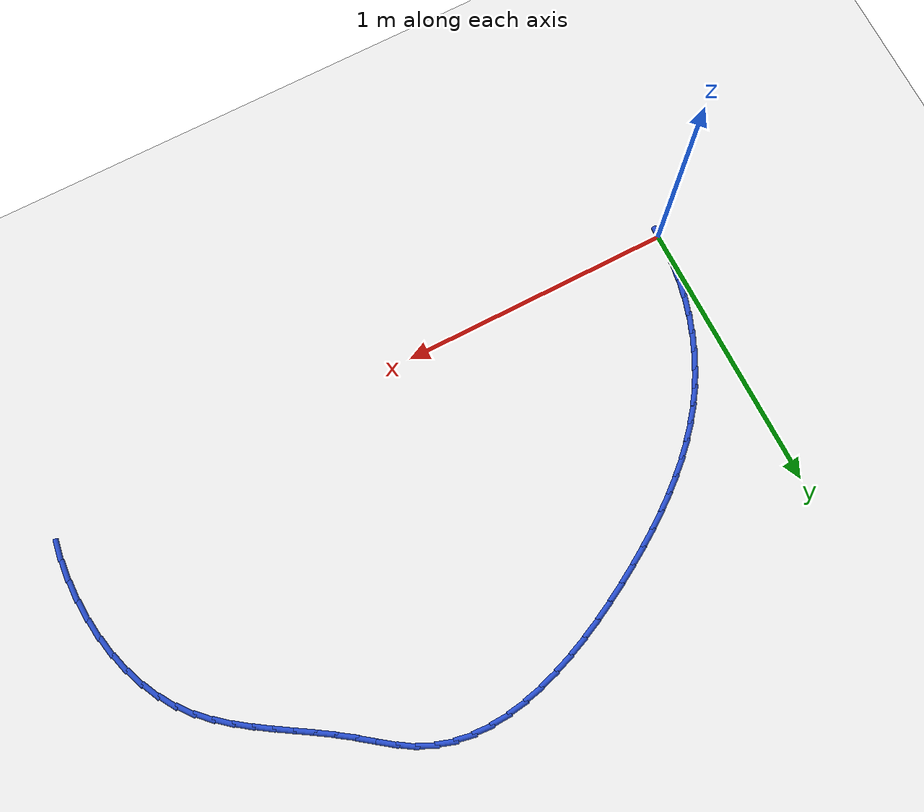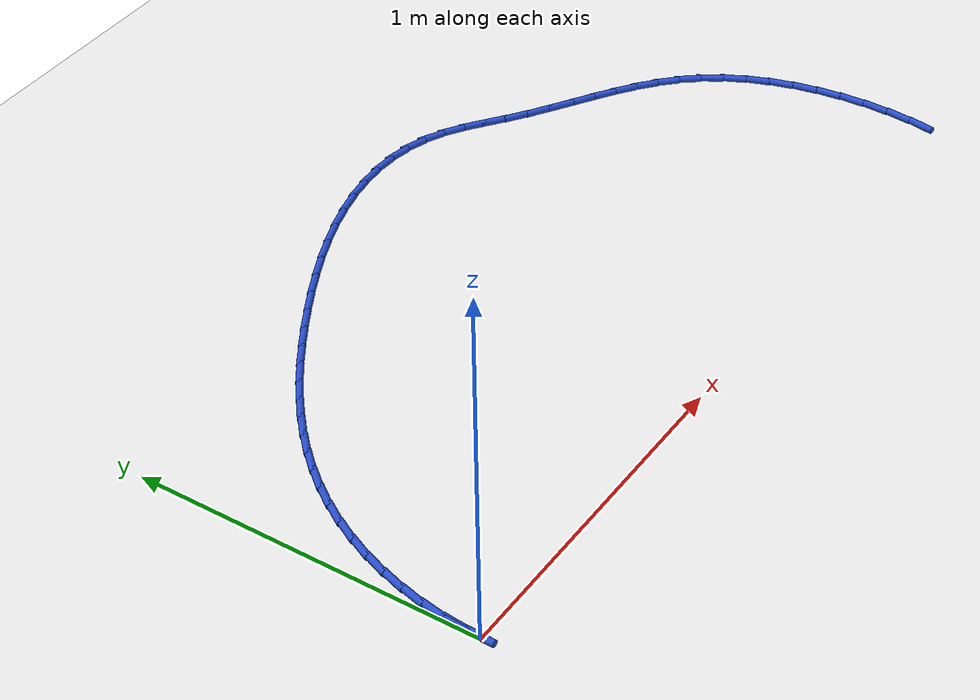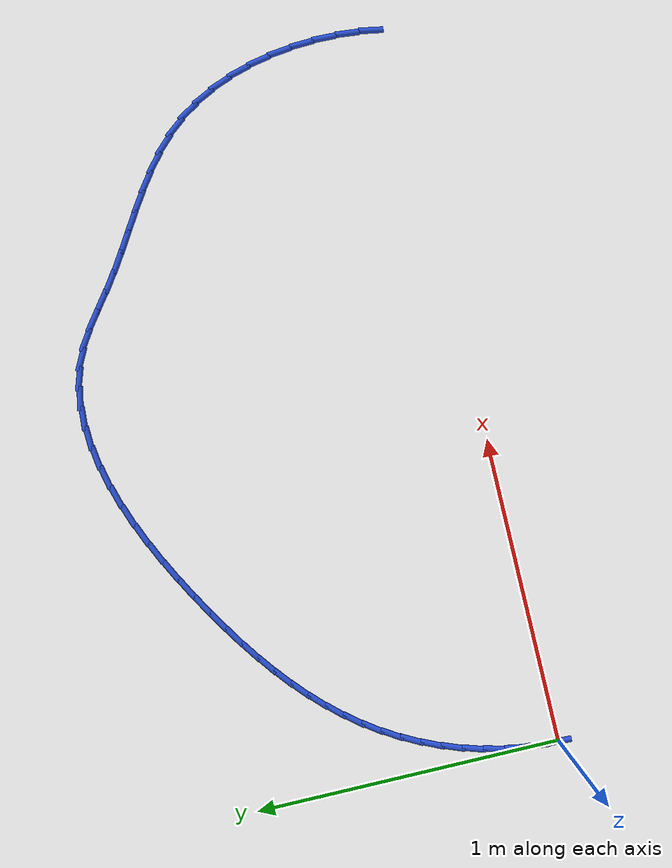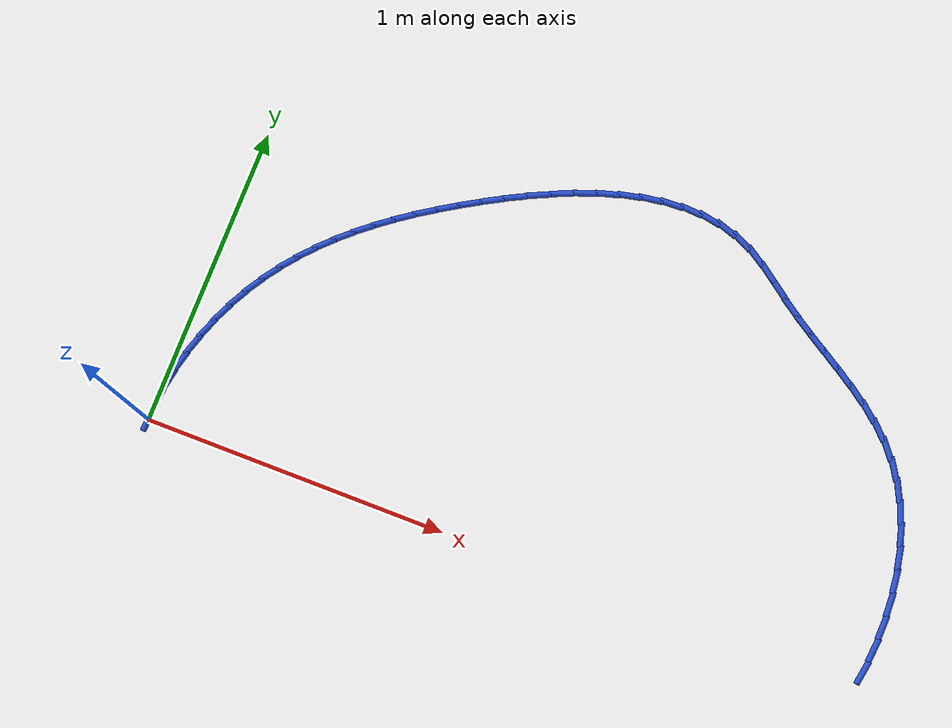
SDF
<sdf version="1.6">
 <world name="default">
  <model name="ground_plane">
   <static>1</static>
   <link name="link">
    <collision name="collision">
     <geometry><plane><normal>0 0 1</normal><size>100 100</size></plane></geometry>
     <surface><friction><ode><mu>100</mu><mu2>50</mu2></ode></friction></surface>
    </collision>
    <visual name="visual">
     <cast_shadows>0</cast_shadows>
     <geometry><plane><normal>0 0 1</normal><size>100 100</size></plane></geometry>
     <material>
      <script><uri>file://media/materials/scripts/gazebo.material</uri><name>Gazebo/WhiteGlow</name></script>
     </material>
    </visual>
   </link>
  </model>
  <model name="line">
   <link name="link_1">
    <pose>0.002940504532465978 0.06962515961517012 0.01 0 1.57 1.4588920820581899</pose>
    <collision name="collision">
     <geometry><cylinder><radius>0.01</radius><length>0.08</length></cylinder></geometry>
    </collision>
    <visual name="visual">
     <material>
      <script><name>Gazebo/Blue</name><uri>file://media/materials/scripts/gazebo.material</uri></script>
     </material>
     <geometry><cylinder><radius>0.01</radius><length>0.08</length></cylinder></geometry>
    </visual>
   </link>
   <link name="link_2">
    <pose>0.010677511127661188 0.13847584449955022 0.01 0 1.57 1.390994139415365</pose>
    <collision name="collision">
     <geometry><cylinder><radius>0.01</radius><length>0.08</length></cylinder></geometry>
    </collision>
    <visual name="visual">
     <material>
      <script><name>Gazebo/Blue</name><uri>file://media/materials/scripts/gazebo.material</uri></script>
     </material>
     <geometry><cylinder><radius>0.01</radius><length>0.08</length></cylinder></geometry>
    </visual>
   </link>
   <link name="link_3">
    <pose>0.023001024885902506 0.20627493666170113 0.01 0 1.57 1.3246508412545366</pose>
    <collision name="collision">
     <geometry><cylinder><radius>0.01</radius><length>0.08</length></cylinder></geometry>
    </collision>
    <visual name="visual">
     <material>
      <script><name>Gazebo/Blue</name><uri>file://media/materials/scripts/gazebo.material</uri></script>
     </material>
     <geometry><cylinder><radius>0.01</radius><length>0.08</length></cylinder></geometry>
    </visual>
   </link>
   <link name="link_4">
    <pose>0.03970105090750696 0.2727453181101838 0.01 0 1.57 1.2595574081873244</pose>
    <collision name="collision">
     <geometry><cylinder><radius>0.01</radius><length>0.08</length></cylinder></geometry>
    </collision>
    <visual name="visual">
     <material>
      <script><name>Gazebo/Blue</name><uri>file://media/materials/scripts/gazebo.material</uri></script>
     </material>
     <geometry><cylinder><radius>0.01</radius><length>0.08</length></cylinder></geometry>
    </visual>
   </link>
   <link name="link_5">
    <pose>0.06056759429279154 0.3376098708535593 0.01 0 1.57 1.1953587905138918</pose>
    <collision name="collision">
     <geometry><cylinder><radius>0.01</radius><length>0.08</length></cylinder></geometry>
    </collision>
    <visual name="visual">
     <material>
      <script><name>Gazebo/Blue</name><uri>file://media/materials/scripts/gazebo.material</uri></script>
     </material>
     <geometry><cylinder><radius>0.01</radius><length>0.08</length></cylinder></geometry>
    </visual>
   </link>
   <link name="link_6">
    <pose>0.08539066014207326 0.40059147690038827 0.01 0 1.57 1.131658081822905</pose>
    <collision name="collision">
     <geometry><cylinder><radius>0.01</radius><length>0.08</length></cylinder></geometry>
    </collision>
    <visual name="visual">
     <material>
      <script><name>Gazebo/Blue</name><uri>file://media/materials/scripts/gazebo.material</uri></script>
     </material>
     <geometry><cylinder><radius>0.01</radius><length>0.08</length></cylinder></geometry>
    </visual>
   </link>
   <link name="link_7">
    <pose>0.11396025355566908 0.4614130182592316 0.01 0 1.57 1.0680224347300236</pose>
    <collision name="collision">
     <geometry><cylinder><radius>0.01</radius><length>0.08</length></cylinder></geometry>
    </collision>
    <visual name="visual">
     <material>
      <script><name>Gazebo/Blue</name><uri>file://media/materials/scripts/gazebo.material</uri></script>
     </material>
     <geometry><cylinder><radius>0.01</radius><length>0.08</length></cylinder></geometry>
    </visual>
   </link>
   <link name="link_8">
    <pose>0.14606637963389607 0.5197973769386506 0.01 0 1.57 1.004097324102144</pose>
    <collision name="collision">
     <geometry><cylinder><radius>0.01</radius><length>0.08</length></cylinder></geometry>
    </collision>
    <visual name="visual">
     <material>
      <script><name>Gazebo/Blue</name><uri>file://media/materials/scripts/gazebo.material</uri></script>
     </material>
     <geometry><cylinder><radius>0.01</radius><length>0.08</length></cylinder></geometry>
    </visual>
   </link>
   <link name="link_9">
    <pose>0.18150323803102736 0.5754875836202319 0.01 0 1.57 0.9411665923642939</pose>
    <collision name="collision">
     <geometry><cylinder><radius>0.01</radius><length>0.08</length></cylinder></geometry>
    </collision>
    <visual name="visual">
     <material>
      <script><name>Gazebo/Blue</name><uri>file://media/materials/scripts/gazebo.material</uri></script>
     </material>
     <geometry><cylinder><radius>0.01</radius><length>0.08</length></cylinder></geometry>
    </visual>
   </link>
   <link name="link_10">
    <pose>0.22012057594966414 0.6284934933965445 0.01 0 1.57 0.8809076936026338</pose>
    <collision name="collision">
     <geometry><cylinder><radius>0.01</radius><length>0.08</length></cylinder></geometry>
    </collision>
    <visual name="visual">
     <material>
      <script><name>Gazebo/Blue</name><uri>file://media/materials/scripts/gazebo.material</uri></script>
     </material>
     <geometry><cylinder><radius>0.01</radius><length>0.08</length></cylinder></geometry>
    </visual>
   </link>
   <link name="link_11">
    <pose>0.26180748744716154 0.6790139652254881 0.01 0 1.57 0.8240451051574373</pose>
    <collision name="collision">
     <geometry><cylinder><radius>0.01</radius><length>0.08</length></cylinder></geometry>
    </collision>
    <visual name="visual">
     <material>
      <script><name>Gazebo/Blue</name><uri>file://media/materials/scripts/gazebo.material</uri></script>
     </material>
     <geometry><cylinder><radius>0.01</radius><length>0.08</length></cylinder></geometry>
    </visual>
   </link>
   <link name="link_12">
    <pose>0.30645389974007514 0.7272518601716182 0.01 0 1.57 0.7711161258153805</pose>
    <collision name="collision">
     <geometry><cylinder><radius>0.01</radius><length>0.08</length></cylinder></geometry>
    </collision>
    <visual name="visual">
     <material>
      <script><name>Gazebo/Blue</name><uri>file://media/materials/scripts/gazebo.material</uri></script>
     </material>
     <geometry><cylinder><radius>0.01</radius><length>0.08</length></cylinder></geometry>
    </visual>
   </link>
   <link name="link_13">
    <pose>0.3539497400449604 0.7734100392994911 0.01 0 1.57 0.7224883708896002</pose>
    <collision name="collision">
     <geometry><cylinder><radius>0.01</radius><length>0.08</length></cylinder></geometry>
    </collision>
    <visual name="visual">
     <material>
      <script><name>Gazebo/Blue</name><uri>file://media/materials/scripts/gazebo.material</uri></script>
     </material>
     <geometry><cylinder><radius>0.01</radius><length>0.08</length></cylinder></geometry>
    </visual>
   </link>
   <link name="link_14">
    <pose>0.4041849355783729 0.817691363673663 0.01 0 1.57 0.6783722897854365</pose>
    <collision name="collision">
     <geometry><cylinder><radius>0.01</radius><length>0.08</length></cylinder></geometry>
    </collision>
    <visual name="visual">
     <material>
      <script><name>Gazebo/Blue</name><uri>file://media/materials/scripts/gazebo.material</uri></script>
     </material>
     <geometry><cylinder><radius>0.01</radius><length>0.08</length></cylinder></geometry>
    </visual>
   </link>
   <link name="link_15">
    <pose>0.4570494135568684 0.8602986943586904 0.01 0 1.57 0.6388445207097867</pose>
    <collision name="collision">
     <geometry><cylinder><radius>0.01</radius><length>0.08</length></cylinder></geometry>
    </collision>
    <visual name="visual">
     <material>
      <script><name>Gazebo/Blue</name><uri>file://media/materials/scripts/gazebo.material</uri></script>
     </material>
     <geometry><cylinder><radius>0.01</radius><length>0.08</length></cylinder></geometry>
    </visual>
   </link>
   <link name="link_16">
    <pose>0.5124331011970024 0.901434892419129 0.01 0 1.57 0.603876035274513</pose>
    <collision name="collision">
     <geometry><cylinder><radius>0.01</radius><length>0.08</length></cylinder></geometry>
    </collision>
    <visual name="visual">
     <material>
      <script><name>Gazebo/Blue</name><uri>file://media/materials/scripts/gazebo.material</uri></script>
     </material>
     <geometry><cylinder><radius>0.01</radius><length>0.08</length></cylinder></geometry>
    </visual>
   </link>
   <link name="link_17">
    <pose>0.5702259257153304 0.9413028189195354 0.01 0 1.57 0.5733603314839448</pose>
    <collision name="collision">
     <geometry><cylinder><radius>0.01</radius><length>0.08</length></cylinder></geometry>
    </collision>
    <visual name="visual">
     <material>
      <script><name>Gazebo/Blue</name><uri>file://media/materials/scripts/gazebo.material</uri></script>
     </material>
     <geometry><cylinder><radius>0.01</radius><length>0.08</length></cylinder></geometry>
    </visual>
   </link>
   <link name="link_18">
    <pose>0.6303178143284083 0.9801053349244656 0.01 0 1.57 0.5471382210214184</pose>
    <collision name="collision">
     <geometry><cylinder><radius>0.01</radius><length>0.08</length></cylinder></geometry>
    </collision>
    <visual name="visual">
     <material>
      <script><name>Gazebo/Blue</name><uri>file://media/materials/scripts/gazebo.material</uri></script>
     </material>
     <geometry><cylinder><radius>0.01</radius><length>0.08</length></cylinder></geometry>
    </visual>
   </link>
   <link name="link_19">
    <pose>0.6925986797543574 1.0180452551585053 0.01 0 1.57 0.5234035970549916</pose>
    <collision name="collision">
     <geometry><cylinder><radius>0.01</radius><length>0.08</length></cylinder></geometry>
    </collision>
    <visual name="visual">
     <material>
      <script><name>Gazebo/Blue</name><uri>file://media/materials/scripts/gazebo.material</uri></script>
     </material>
     <geometry><cylinder><radius>0.01</radius><length>0.08</length></cylinder></geometry>
    </visual>
   </link>
   <link name="link_20">
    <pose>0.7569054533422209 1.055156055015706 0.01 0 1.57 0.49661018077165053</pose>
    <collision name="collision">
     <geometry><cylinder><radius>0.01</radius><length>0.08</length></cylinder></geometry>
    </collision>
    <visual name="visual">
     <material>
      <script><name>Gazebo/Blue</name><uri>file://media/materials/scripts/gazebo.material</uri></script>
     </material>
     <geometry><cylinder><radius>0.01</radius><length>0.08</length></cylinder></geometry>
    </visual>
   </link>
   <link name="link_21">
    <pose>0.8229028028045137 1.0909206199489327 0.01 0 1.57 0.46519945039322314</pose>
    <collision name="collision">
     <geometry><cylinder><radius>0.01</radius><length>0.08</length></cylinder></geometry>
    </collision>
    <visual name="visual">
     <material>
      <script><name>Gazebo/Blue</name><uri>file://media/materials/scripts/gazebo.material</uri></script>
     </material>
     <geometry><cylinder><radius>0.01</radius><length>0.08</length></cylinder></geometry>
    </visual>
   </link>
   <link name="link_22">
    <pose>0.8902204450457815 1.1247101254547784 0.01 0 1.57 0.42850601090403156</pose>
    <collision name="collision">
     <geometry><cylinder><radius>0.01</radius><length>0.08</length></cylinder></geometry>
    </collision>
    <visual name="visual">
     <material>
      <script><name>Gazebo/Blue</name><uri>file://media/materials/scripts/gazebo.material</uri></script>
     </material>
     <geometry><cylinder><radius>0.01</radius><length>0.08</length></cylinder></geometry>
    </visual>
   </link>
   <link name="link_23">
    <pose>0.9584880969705709 1.1558957470298354 0.01 0 1.57 0.3856790070793091</pose>
    <collision name="collision">
     <geometry><cylinder><radius>0.01</radius><length>0.08</length></cylinder></geometry>
    </collision>
    <visual name="visual">
     <material>
      <script><name>Gazebo/Blue</name><uri>file://media/materials/scripts/gazebo.material</uri></script>
     </material>
     <geometry><cylinder><radius>0.01</radius><length>0.08</length></cylinder></geometry>
    </visual>
   </link>
   <link name="link_24">
    <pose>1.027335475483428 1.183848660170697 0.01 0 1.57 0.3356616734011062</pose>
    <collision name="collision">
     <geometry><cylinder><radius>0.01</radius><length>0.08</length></cylinder></geometry>
    </collision>
    <visual name="visual">
     <material>
      <script><name>Gazebo/Blue</name><uri>file://media/materials/scripts/gazebo.material</uri></script>
     </material>
     <geometry><cylinder><radius>0.01</radius><length>0.08</length></cylinder></geometry>
    </visual>
   </link>
   <link name="link_25">
    <pose>1.0963922974888984 1.207940040373956 0.01 0 1.57 0.2771782122763301</pose>
    <collision name="collision">
     <geometry><cylinder><radius>0.01</radius><length>0.08</length></cylinder></geometry>
    </collision>
    <visual name="visual">
     <material>
      <script><name>Gazebo/Blue</name><uri>file://media/materials/scripts/gazebo.material</uri></script>
     </material>
     <geometry><cylinder><radius>0.01</radius><length>0.08</length></cylinder></geometry>
    </visual>
   </link>
   <link name="link_26">
    <pose>1.1652882798915296 1.2275410631362056 0.01 0 1.57 0.2087458293542617</pose>
    <collision name="collision">
     <geometry><cylinder><radius>0.01</radius><length>0.08</length></cylinder></geometry>
    </collision>
    <visual name="visual">
     <material>
      <script><name>Gazebo/Blue</name><uri>file://media/materials/scripts/gazebo.material</uri></script>
     </material>
     <geometry><cylinder><radius>0.01</radius><length>0.08</length></cylinder></geometry>
    </visual>
   </link>
   <link name="link_27">
    <pose>1.2336531395958665 1.2420229039540382 0.01 0 1.57 0.1287441695853944</pose>
    <collision name="collision">
     <geometry><cylinder><radius>0.01</radius><length>0.08</length></cylinder></geometry>
    </collision>
    <visual name="visual">
     <material>
      <script><name>Gazebo/Blue</name><uri>file://media/materials/scripts/gazebo.material</uri></script>
     </material>
     <geometry><cylinder><radius>0.01</radius><length>0.08</length></cylinder></geometry>
    </visual>
   </link>
   <link name="link_28">
    <pose>1.301116593506455 1.2507567383240468 0.01 0 1.57 0.035593671870616295</pose>
    <collision name="collision">
     <geometry><cylinder><radius>0.01</radius><length>0.08</length></cylinder></geometry>
    </collision>
    <visual name="visual">
     <material>
      <script><name>Gazebo/Blue</name><uri>file://media/materials/scripts/gazebo.material</uri></script>
     </material>
     <geometry><cylinder><radius>0.01</radius><length>0.08</length></cylinder></geometry>
    </visual>
   </link>
   <link name="link_29">
    <pose>1.367308358527843 1.2531137417428244 0.01 0 1.57 -0.07189241319512991</pose>
    <collision name="collision">
     <geometry><cylinder><radius>0.01</radius><length>0.08</length></cylinder></geometry>
    </collision>
    <visual name="visual">
     <material>
      <script><name>Gazebo/Blue</name><uri>file://media/materials/scripts/gazebo.material</uri></script>
     </material>
     <geometry><cylinder><radius>0.01</radius><length>0.08</length></cylinder></geometry>
    </visual>
   </link>
   <link name="link_30">
    <pose>1.4318581515645754 1.2484650897069642 0.01 0 1.57 -0.19394333135701974</pose>
    <collision name="collision">
     <geometry><cylinder><radius>0.01</radius><length>0.08</length></cylinder></geometry>
    </collision>
    <visual name="visual">
     <material>
      <script><name>Gazebo/Blue</name><uri>file://media/materials/scripts/gazebo.material</uri></script>
     </material>
     <geometry><cylinder><radius>0.01</radius><length>0.08</length></cylinder></geometry>
    </visual>
   </link>
   <link name="link_31">
    <pose>1.4943956895211983 1.2361819577130584 0.01 0 1.57 -0.32913462486975115</pose>
    <collision name="collision">
     <geometry><cylinder><radius>0.01</radius><length>0.08</length></cylinder></geometry>
    </collision>
    <visual name="visual">
     <material>
      <script><name>Gazebo/Blue</name><uri>file://media/materials/scripts/gazebo.material</uri></script>
     </material>
     <geometry><cylinder><radius>0.01</radius><length>0.08</length></cylinder></geometry>
    </visual>
   </link>
   <link name="link_32">
    <pose>1.5545506893022587 1.2156355212577006 0.01 0 1.57 -0.47284256622268966</pose>
    <collision name="collision">
     <geometry><cylinder><radius>0.01</radius><length>0.08</length></cylinder></geometry>
    </collision>
    <visual name="visual">
     <material>
      <script><name>Gazebo/Blue</name><uri>file://media/materials/scripts/gazebo.material</uri></script>
     </material>
     <geometry><cylinder><radius>0.01</radius><length>0.08</length></cylinder></geometry>
    </visual>
   </link>
   <link name="link_33">
    <pose>1.6119797950772679 1.1862578281948128 0.01 0 1.57 -0.5894223501486121</pose>
    <collision name="collision">
     <geometry><cylinder><radius>0.01</radius><length>0.08</length></cylinder></geometry>
    </collision>
    <visual name="visual">
     <material>
      <script><name>Gazebo/Blue</name><uri>file://media/materials/scripts/gazebo.material</uri></script>
     </material>
     <geometry><cylinder><radius>0.01</radius><length>0.08</length></cylinder></geometry>
    </visual>
   </link>
   <link name="link_34">
    <pose>1.6671676235807127 1.1493526590588372 0.01 0 1.57 -0.6453108764358124</pose>
    <collision name="collision">
     <geometry><cylinder><radius>0.01</radius><length>0.08</length></cylinder></geometry>
    </collision>
    <visual name="visual">
     <material>
      <script><name>Gazebo/Blue</name><uri>file://media/materials/scripts/gazebo.material</uri></script>
     </material>
     <geometry><cylinder><radius>0.01</radius><length>0.08</length></cylinder></geometry>
    </visual>
   </link>
   <link name="link_35">
    <pose>1.7215625339163192 1.1084024512195045 0.01 0 1.57 -0.6442226904391146</pose>
    <collision name="collision">
     <geometry><cylinder><radius>0.01</radius><length>0.08</length></cylinder></geometry>
    </collision>
    <visual name="visual">
     <material>
      <script><name>Gazebo/Blue</name><uri>file://media/materials/scripts/gazebo.material</uri></script>
     </material>
     <geometry><cylinder><radius>0.01</radius><length>0.08</length></cylinder></geometry>
    </visual>
   </link>
   <link name="link_36">
    <pose>1.7766669657012588 1.0670119650620886 0.01 0 1.57 -0.6038272754130736</pose>
    <collision name="collision">
     <geometry><cylinder><radius>0.01</radius><length>0.08</length></cylinder></geometry>
    </collision>
    <visual name="visual">
     <material>
      <script><name>Gazebo/Blue</name><uri>file://media/materials/scripts/gazebo.material</uri></script>
     </material>
     <geometry><cylinder><radius>0.01</radius><length>0.08</length></cylinder></geometry>
    </visual>
   </link>
   <link name="link_37">
    <pose>1.833481444476112 1.0278230311447696 0.01 0 1.57 -0.5730800771145929</pose>
    <collision name="collision">
     <geometry><cylinder><radius>0.01</radius><length>0.08</length></cylinder></geometry>
    </collision>
    <visual name="visual">
     <material>
      <script><name>Gazebo/Blue</name><uri>file://media/materials/scripts/gazebo.material</uri></script>
     </material>
     <geometry><cylinder><radius>0.01</radius><length>0.08</length></cylinder></geometry>
    </visual>
   </link>
   <link name="link_38">
    <pose>1.891420079872086 0.9904339168571132 0.01 0 1.57 -0.5615395118491368</pose>
    <collision name="collision">
     <geometry><cylinder><radius>0.01</radius><length>0.08</length></cylinder></geometry>
    </collision>
    <visual name="visual">
     <material>
      <script><name>Gazebo/Blue</name><uri>file://media/materials/scripts/gazebo.material</uri></script>
     </material>
     <geometry><cylinder><radius>0.01</radius><length>0.08</length></cylinder></geometry>
    </visual>
   </link>
   <link name="link_39">
    <pose>1.9495843073722334 0.9538430194566021 0.01 0 1.57 -0.5693117103426155</pose>
    <collision name="collision">
     <geometry><cylinder><radius>0.01</radius><length>0.08</length></cylinder></geometry>
    </collision>
    <visual name="visual">
     <material>
      <script><name>Gazebo/Blue</name><uri>file://media/materials/scripts/gazebo.material</uri></script>
     </material>
     <geometry><cylinder><radius>0.01</radius><length>0.08</length></cylinder></geometry>
    </visual>
   </link>
   <link name="link_40">
    <pose>2.0070755624596064 0.9170487362007178 0.01 0 1.57 -0.5968569817115497</pose>
    <collision name="collision">
     <geometry><cylinder><radius>0.01</radius><length>0.08</length></cylinder></geometry>
    </collision>
    <visual name="visual">
     <material>
      <script><name>Gazebo/Blue</name><uri>file://media/materials/scripts/gazebo.material</uri></script>
     </material>
     <geometry><cylinder><radius>0.01</radius><length>0.08</length></cylinder></geometry>
    </visual>
   </link>
   <link name="link_41">
    <pose>2.0629952806172587 0.8790494643469429 0.01 0 1.57 -0.6449203059760317</pose>
    <collision name="collision">
     <geometry><cylinder><radius>0.01</radius><length>0.08</length></cylinder></geometry>
    </collision>
    <visual name="visual">
     <material>
      <script><name>Gazebo/Blue</name><uri>file://media/materials/scripts/gazebo.material</uri></script>
     </material>
     <geometry><cylinder><radius>0.01</radius><length>0.08</length></cylinder></geometry>
    </visual>
   </link>
   <link name="link_42">
    <pose>2.1164448973282433 0.838843601152759 0.01 0 1.57 -0.7142111758094997</pose>
    <collision name="collision">
     <geometry><cylinder><radius>0.01</radius><length>0.08</length></cylinder></geometry>
    </collision>
    <visual name="visual">
     <material>
      <script><name>Gazebo/Blue</name><uri>file://media/materials/scripts/gazebo.material</uri></script>
     </material>
     <geometry><cylinder><radius>0.01</radius><length>0.08</length></cylinder></geometry>
    </visual>
   </link>
   <link name="link_43">
    <pose>2.166525848075613 0.7954295438756481 0.01 0 1.57 -0.8047683948204823</pose>
    <collision name="collision">
     <geometry><cylinder><radius>0.01</radius><length>0.08</length></cylinder></geometry>
    </collision>
    <visual name="visual">
     <material>
      <script><name>Gazebo/Blue</name><uri>file://media/materials/scripts/gazebo.material</uri></script>
     </material>
     <geometry><cylinder><radius>0.01</radius><length>0.08</length></cylinder></geometry>
    </visual>
   </link>
   <link name="link_44">
    <pose>2.21233956834242 0.7478056897730925 0.01 0 1.57 -0.9145971219041019</pose>
    <collision name="collision">
     <geometry><cylinder><radius>0.01</radius><length>0.08</length></cylinder></geometry>
    </collision>
    <visual name="visual">
     <material>
      <script><name>Gazebo/Blue</name><uri>file://media/materials/scripts/gazebo.material</uri></script>
     </material>
     <geometry><cylinder><radius>0.01</radius><length>0.08</length></cylinder></geometry>
    </visual>
   </link>
   <link name="link_45">
    <pose>2.2530029555427813 0.6949983340847794 0.01 0 1.57 -1.0285110185305828</pose>
    <collision name="collision">
     <geometry><cylinder><radius>0.01</radius><length>0.08</length></cylinder></geometry>
    </collision>
    <visual name="visual">
     <material>
      <script><name>Gazebo/Blue</name><uri>file://media/materials/scripts/gazebo.material</uri></script>
     </material>
     <geometry><cylinder><radius>0.01</radius><length>0.08</length></cylinder></geometry>
    </visual>
   </link>
   <link name="link_46">
    <pose>2.288063431910288 0.6368105685387084 0.01 0 1.57 -1.132523484402976</pose>
    <collision name="collision">
     <geometry><cylinder><radius>0.01</radius><length>0.08</length></cylinder></geometry>
    </collision>
    <visual name="visual">
     <material>
      <script><name>Gazebo/Blue</name><uri>file://media/materials/scripts/gazebo.material</uri></script>
     </material>
     <geometry><cylinder><radius>0.01</radius><length>0.08</length></cylinder></geometry>
    </visual>
   </link>
   <link name="link_47">
    <pose>2.3175451899782504 0.573905722130972 0.01 0 1.57 -1.2270551111721097</pose>
    <collision name="collision">
     <geometry><cylinder><radius>0.01</radius><length>0.08</length></cylinder></geometry>
    </collision>
    <visual name="visual">
     <material>
      <script><name>Gazebo/Blue</name><uri>file://media/materials/scripts/gazebo.material</uri></script>
     </material>
     <geometry><cylinder><radius>0.01</radius><length>0.08</length></cylinder></geometry>
    </visual>
   </link>
   <link name="link_48">
    <pose>2.341497163500604 0.506991764474025 0.01 0 1.57 -1.3135596567521688</pose>
    <collision name="collision">
     <geometry><cylinder><radius>0.01</radius><length>0.08</length></cylinder></geometry>
    </collision>
    <visual name="visual">
     <material>
      <script><name>Gazebo/Blue</name><uri>file://media/materials/scripts/gazebo.material</uri></script>
     </material>
     <geometry><cylinder><radius>0.01</radius><length>0.08</length></cylinder></geometry>
    </visual>
   </link>
   <link name="link_49">
    <pose>2.359968286231286 0.43677666518032215 0.01 0 1.57 -1.3935853370371938</pose>
    <collision name="collision">
     <geometry><cylinder><radius>0.01</radius><length>0.08</length></cylinder></geometry>
    </collision>
    <visual name="visual">
     <material>
      <script><name>Gazebo/Blue</name><uri>file://media/materials/scripts/gazebo.material</uri></script>
     </material>
     <geometry><cylinder><radius>0.01</radius><length>0.08</length></cylinder></geometry>
    </visual>
   </link>
   <link name="link_50">
    <pose>2.373007491924234 0.36396839386231855 0.01 0 1.57 -1.468651171614115</pose>
    <collision name="collision">
     <geometry><cylinder><radius>0.01</radius><length>0.08</length></cylinder></geometry>
    </collision>
    <visual name="visual">
     <material>
      <script><name>Gazebo/Blue</name><uri>file://media/materials/scripts/gazebo.material</uri></script>
     </material>
     <geometry><cylinder><radius>0.01</radius><length>0.08</length></cylinder></geometry>
    </visual>
   </link>
   <link name="link_51">
    <pose>2.380663714333386 0.28927492013246947 0.01 0 1.57 -1.5401989030236967</pose>
    <collision name="collision">
     <geometry><cylinder><radius>0.01</radius><length>0.08</length></cylinder></geometry>
    </collision>
    <visual name="visual">
     <material>
      <script><name>Gazebo/Blue</name><uri>file://media/materials/scripts/gazebo.material</uri></script>
     </material>
     <geometry><cylinder><radius>0.01</radius><length>0.08</length></cylinder></geometry>
    </visual>
   </link>
   <link name="link_52">
    <pose>2.3829858872126772 0.21340421360322973 0.01 0 1.57 1.5320033268670845</pose>
    <collision name="collision">
     <geometry><cylinder><radius>0.01</radius><length>0.08</length></cylinder></geometry>
    </collision>
    <visual name="visual">
     <material>
      <script><name>Gazebo/Blue</name><uri>file://media/materials/scripts/gazebo.material</uri></script>
     </material>
     <geometry><cylinder><radius>0.01</radius><length>0.08</length></cylinder></geometry>
    </visual>
   </link>
   <link name="link_53">
    <pose>2.380022944316047 0.13706424388705438 0.01 0 1.57 1.4634706530410784</pose>
    <collision name="collision">
     <geometry><cylinder><radius>0.01</radius><length>0.08</length></cylinder></geometry>
    </collision>
    <visual name="visual">
     <material>
      <script><name>Gazebo/Blue</name><uri>file://media/materials/scripts/gazebo.material</uri></script>
     </material>
     <geometry><cylinder><radius>0.01</radius><length>0.08</length></cylinder></geometry>
    </visual>
   </link>
   <link name="link_54">
    <pose>2.3718238193974304 0.06096298059639842 0.01 0 1.57 1.3945270711593916</pose>
    <collision name="collision">
     <geometry><cylinder><radius>0.01</radius><length>0.08</length></cylinder></geometry>
    </collision>
    <visual name="visual">
     <material>
      <script><name>Gazebo/Blue</name><uri>file://media/materials/scripts/gazebo.material</uri></script>
     </material>
     <geometry><cylinder><radius>0.01</radius><length>0.08</length></cylinder></geometry>
    </visual>
   </link>
   <link name="link_110">
    <pose>-1.0408340855860843e-16 1.6653345369377348e-16 0.01 0 1.57 1.5277411637908158</pose>
    <collision name="collision">
     <geometry><cylinder><radius>0.01</radius><length>0.08</length></cylinder></geometry>
    </collision>
    <visual name="visual">
     <material>
      <script><name>Gazebo/Blue</name><uri>file://media/materials/scripts/gazebo.material</uri></script>
     </material>
     <geometry><cylinder><radius>0.01</radius><length>0.08</length></cylinder></geometry>
    </visual>
   </link>
   <link name="link_111">
    <pose>0.002997015865544076 0.06956572741898746 0.01 0 1.57 1.527741163790816</pose>
    <collision name="collision">
     <geometry><cylinder><radius>0.01</radius><length>0.08</length></cylinder></geometry>
    </collision>
    <visual name="visual">
     <material>
      <script><name>Gazebo/Blue</name><uri>file://media/materials/scripts/gazebo.material</uri></script>
     </material>
     <geometry><cylinder><radius>0.01</radius><length>0.08</length></cylinder></geometry>
    </visual>
   </link>
  </model>
 </world>
</sdf>
